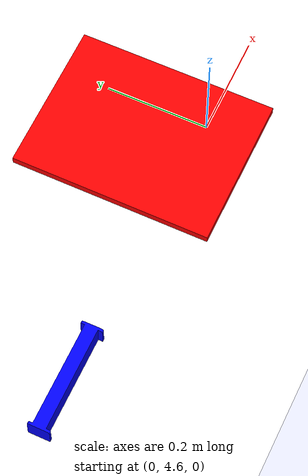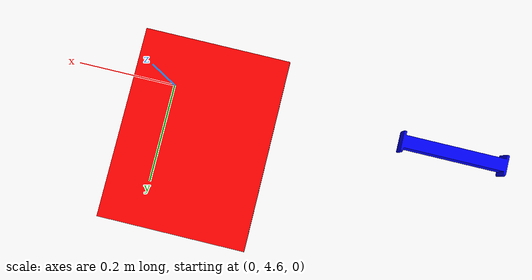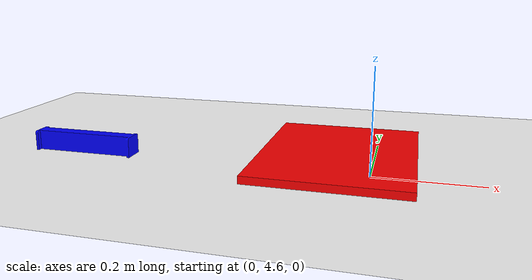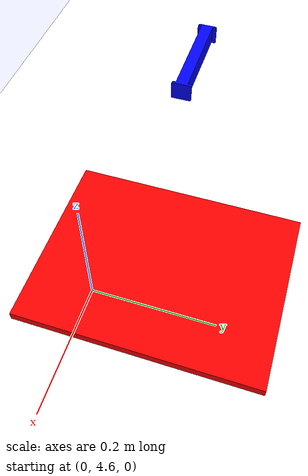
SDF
<sdf version="1.6">
 <world name="default">
  <light name="sun" type="directional">
   <pose>0 0 10 0 -0 0</pose>
   <diffuse>0.8 0.8 0.8 1</diffuse>
   <specular>0.2 0.2 0.2 1</specular>
   <attenuation>
    <range>1000</range>
    <constant>0.9</constant>
    <linear>0.01</linear>
    <quadratic>0.001</quadratic>
   </attenuation>
   <direction>-0.5 0.1 -0.9</direction>
   <spot><inner_angle>0</inner_angle><outer_angle>0</outer_angle><falloff>0</falloff></spot>
  </light>
  <include><uri>model://assignment1</uri></include>
  <model name="stairs">
   <link name="Component1">
    <inertial>
     <mass>14.04</mass>
     <pose>-0.000388 -0.000365 0.0075 0 -0 0</pose>
     <inertia>
      <ixx>0.17822</ixx>
      <iyy>0.105563</iyy>
      <izz>0.283257</izz>
      <ixy>8.6859e-18</ixy>
      <iyz>2.91379e-18</iyz>
      <ixz>-2.90024e-18</ixz>
     </inertia>
    </inertial>
    <visual name="Component1_visual">
     <geometry>
      <mesh><uri>model://stairs/meshes/Component1.stl</uri><scale>0.001 0.001 0.001</scale></mesh>
     </geometry>
     <material>
      <ambient>1 0 0 1</ambient>
      <diffuse>1 0 0 1</diffuse>
      <specular>0.5 0.5 0.5 1</specular>
      <emissive>0 0 0 1</emissive>
     </material>
    </visual>
    <collision name="Component1_collision">
     <geometry>
      <mesh><uri>model://stairs/meshes/Component1.stl</uri><scale>0.001 0.001 0.001</scale></mesh>
     </geometry>
    </collision>
   </link>
   <pose>-0.068029 4.696250 -0.000014 -0.000072 0.00 0.00</pose>
  </model>
  <model name="hurdle">
   <link name="Component1">
    <inertial>
     <mass>1.7337</mass>
     <pose>0 0 0.019992 0 -0 0</pose>
     <inertia>
      <ixx>0.000333814</ixx>
      <iyy>0.00696935</iyy>
      <izz>0.00684116</izz>
      <ixy>9.54235e-35</ixy>
      <iyz>1.81864e-19</iyz>
      <ixz>1.45491e-18</ixz>
     </inertia>
    </inertial>
    <visual name="Component1_visual">
     <geometry>
      <mesh><uri>model://hurdle/meshes/Component1.stl</uri><scale>0.001 0.001 0.001</scale></mesh>
     </geometry>
     <material>
      <ambient>0 0 1 1</ambient>
      <diffuse>0 0 1 1</diffuse>
      <specular>0.5 0.5 0.5 1</specular>
      <emissive>0 0 0 1</emissive>
     </material>
    </visual>
    <collision name="Component1_collision">
     <geometry>
      <mesh><uri>model://hurdle/meshes/Component1.stl</uri><scale>0.001 0.001 0.001</scale></mesh>
     </geometry>
    </collision>
   </link>
   <pose>-0.574273 4.606131 -0.000004 -0.000188 0.00 0.000252</pose>
  </model>
  <gravity>0 0 -9.8</gravity>
  <magnetic_field>6e-06 2.3e-05 -4.2e-05</magnetic_field>
  <atmosphere type="adiabatic"/>
  <physics type="ode">
   <max_step_size>0.001</max_step_size>
   <real_time_factor>1</real_time_factor>
   <real_time_update_rate>1000</real_time_update_rate>
  </physics>
  <scene>
   <grid>false</grid>
   <ambient>0.5 0.5 0.5 1</ambient>
   <background>0.7 0.7 0.7 1</background>
   <shadows>1</shadows>
  </scene>
  <audio><device>default</device></audio>
  <spherical_coordinates>
   <surface_model>EARTH_WGS84</surface_model>
   <latitude_deg>0</latitude_deg>
   <longitude_deg>0</longitude_deg>
   <elevation>0</elevation>
   <heading_deg>0</heading_deg>
  </spherical_coordinates>
 </world>
</sdf>

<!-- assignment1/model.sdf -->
<sdf version="1.4">
<model name="assignment1">
  <static>true</static>
    <link name="link">
      <collision name="collision">
        <geometry>
          <plane>
            <normal>0 0 1</normal>
            <size>40 40</size>
          </plane>
        </geometry>
        <surface>
          <friction>
            <ode>
              <mu>100</mu>
              <mu2>50</mu2>
            </ode>
          </friction>
        </surface>
      </collision>
      <visual name="visual">
        <cast_shadows>false</cast_shadows>
        <geometry>
          <plane>
            <normal>0 0 1</normal>
            <size>40 40</size>
          </plane>
        </geometry>
        <material>
          <script>
            <uri>model://assignment1/materials/scripts/assignment1.material</uri>
            <name>assignment1/Image</name>
          </script>
          <ambient>1 1 1 1</ambient>
        </material>
      </visual>
    </link>
  </model>
</sdf>
